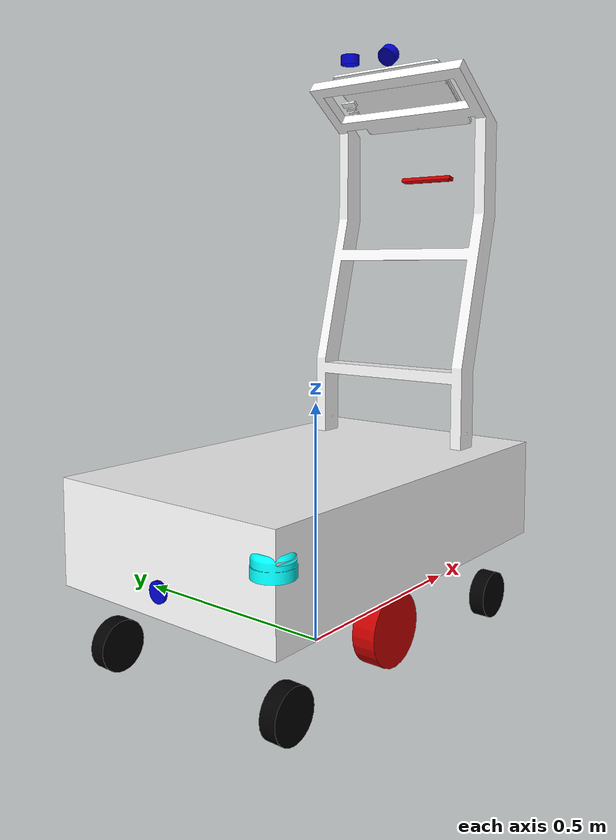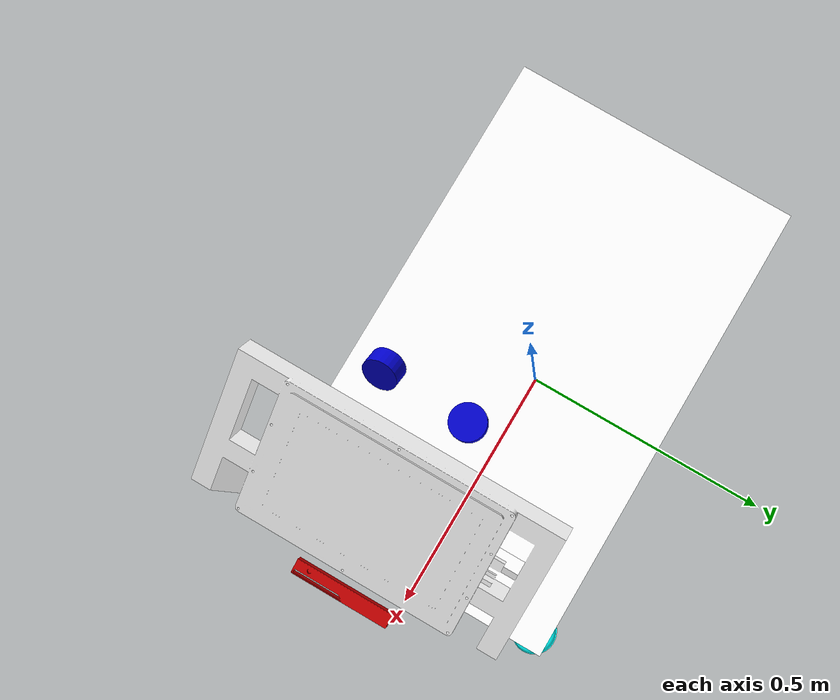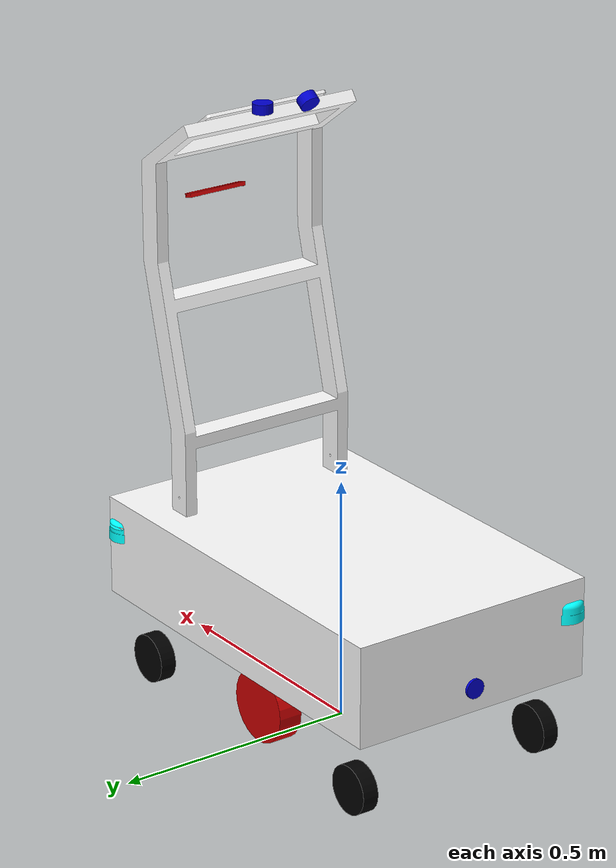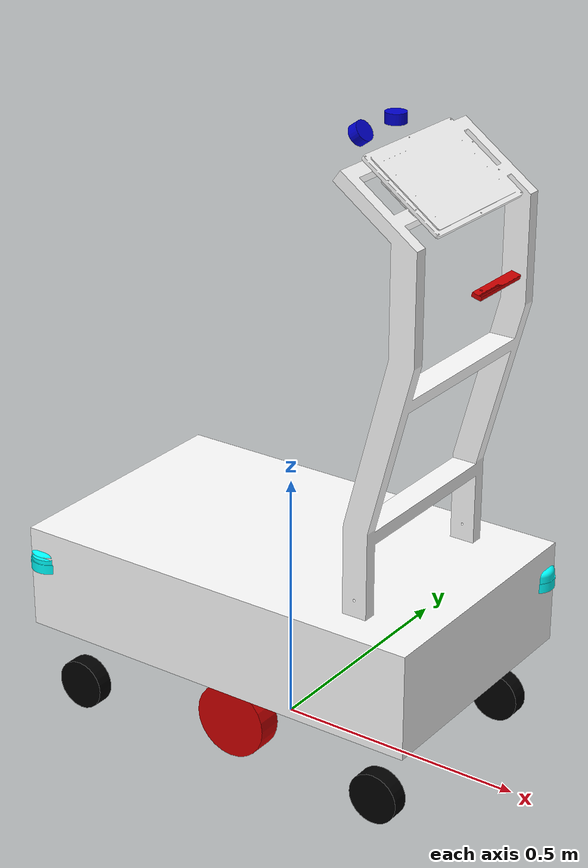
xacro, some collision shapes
<?xml version="1.0"?>
<robot name="amr" xmlns:xacro="http://www.ros.org/wiki/xacro">

    <!-- Defining the colors used in this robot -->
    <material name="Black">
        <color rgba="0.0 0.0 0.0 1.0" />
    </material>
    <material name="Red">
        <color rgba="0.8 0.0 0.0 1.0" />
    </material>
    <material name="White">
        <color rgba="1.0 1.0 1.0 1.0" />
    </material>
    <material name="Grey">
        <color rgba="0.8 0.8 0.8 1.0" />
    </material>
    <material name="Blue">
        <color rgba="0.0 0.0 0.8 1.0" />
    </material>
    <material name="Cyan">
        <color rgba="0.0 1.0 1.0 1.0" />
    </material>

    <!-- PROPERTY LIST -->
    <!--All units in m-kg-s-radians unit system -->
    <xacro:property name="M_PI" value="3.1415926535897931" />
    <xacro:property name="M_PI_2" value="${M_PI/2.0}" />
    <xacro:property name="DEG_TO_RAD" value="${M_PI/180.0}" />

    <!-- Main body specification -->
    <xacro:property name="base_height" value="0.207" />
    <xacro:property name="base_length" value="0.848" />
    <xacro:property name="base_width" value="0.525" />
    <xacro:property name="base_mass" value="50" />

    <!-- Caster wheel specification -->
    <xacro:property name="caster_wheel_height" value="0.034" />
    <xacro:property name="caster_wheel_radius" value="0.05" />
    <xacro:property name="caster_wheel_mass" value="1.13" />

    <xacro:property name="base_2_caster_wheel_x" value="${0.6865/2}" />
    <xacro:property name="base_2_caster_wheel_y" value="${0.430/2}" />
    <xacro:property name="base_2_caster_wheel_z" value="${base_height/2 + 0.129}" />

    <!-- Driving wheel specification -->
    <xacro:property name="driving_wheel_height" value="0.050" />
    <xacro:property name="driving_wheel_radius" value="0.075" />
    <xacro:property name="driving_wheel_mass" value="2.0" />
    <xacro:property name="driving_wheel_velocity" value="${4*M_PI}" />
    <xacro:property name="driving_wheel_effort" value="15" />

    <xacro:property name="base_2_driving_wheel_x" value="0.0" />
    <xacro:property name="base_2_driving_wheel_y" value="${driving_wheel_height/2 + 0.2986/2}" />
    <xacro:property name="base_2_driving_wheel_z" value="${base_height/2 + 0.105}" />

    <!-- RP LIDAR specification-->
    <xacro:property name="laser_height" value="0.041" />
    <xacro:property name="laser_radius" value="0.038" />
    <xacro:property name="laser_mass" value="0.190" />
    <xacro:property name="laser_update_rate" value="12" />
    <xacro:property name="laser_sample" value="360" />
    <xacro:property name="laser_resolution" value="1.0" />
    <xacro:property name="laser_min_angle" value="${0*DEG_TO_RAD}" />
    <xacro:property name="laser_max_angle" value="${250*DEG_TO_RAD}" />
    <xacro:property name="laser_resolution_range" value="0.01" />
    <xacro:property name="laser_min_range" value="0.15" />
    <xacro:property name="laser_max_range" value="11.0" />

    <xacro:property name="base_2_laser_x" value="${base_length/2 - 0.025}" />
    <xacro:property name="base_2_laser_y" value="${base_width/2 - 0.026}" />
    <xacro:property name="base_2_laser_z" value="${-1.0*base_height/2 + 0.1215}" />

    <!-- Camera specification-->
    <xacro:property name="camera_height" value="0.020" />
    <xacro:property name="camera_radius" value="0.020" />
    <xacro:property name="camera_mass" value="0.02" />
    <xacro:property name="camera_update_rate" value="24" />
    <xacro:property name="camera_sensor_width" value="640" />
    <xacro:property name="camera_sensor_height" value="480" />
    <xacro:property name="camera_sensor_hfov" value="${M_PI_2}" />
    <xacro:property name="camera_sensor_format" value="RGB8" />
    <xacro:property name="camera_sensor_near" value="0.01" />
    <xacro:property name="camera_sensor_far" value="50.0" />

    <xacro:property name="base_2_camera_rear_x" value="${-1.0*base_length/2 - 0.0155}" />
    <xacro:property name="base_2_camera_rear_y" value="${base_width/2 - 0.26335}" />
    <xacro:property name="base_2_camera_rear_z" value="${-1.0*base_height/2 + 0.0492}" />
    <xacro:property name="base_2_camera_rear_roll" value="0.0" />
    <xacro:property name="base_2_camera_rear_pitch" value="0.0" />
    <xacro:property name="base_2_camera_rear_yaw" value="${M_PI}" />
    <xacro:property name="base_2_camera_rear_roll_tuning" value="0.0" />
    <xacro:property name="base_2_camera_rear_pitch_tuning" value="0.0" />
    <xacro:property name="base_2_camera_rear_yaw_tuning" value="${0.0*DEG_TO_RAD}" />

    <xacro:property name="base_2_camera_top_x" value="${base_length/2 - 0.24101320}" />
    <xacro:property name="base_2_camera_top_y" value="${base_width/2 - 0.21154}" />
    <xacro:property name="base_2_camera_top_z" value="${-1.0*base_height/2 + 1.058778}" />
    <xacro:property name="base_2_camera_top_roll" value="0.0" />
    <xacro:property name="base_2_camera_top_pitch" value="${-1.0*M_PI_2}" />
    <xacro:property name="base_2_camera_top_yaw" value="${M_PI}" />
    <xacro:property name="base_2_camera_top_roll_tuning" value="0.0" />
    <xacro:property name="base_2_camera_top_pitch_tuning" value="${0.0*DEG_TO_RAD}" />
    <xacro:property name="base_2_camera_top_yaw_tuning" value="${0.0*DEG_TO_RAD}" />

    <xacro:property name="base_2_camera_monitoring_x" value="${base_length/2 - 0.261530}" />
    <xacro:property name="base_2_camera_monitoring_y" value="${base_width/2 - 0.313413}" />
    <xacro:property name="base_2_camera_monitoring_z" value="${-1.0*base_height/2 + 1.022624}" />
    <xacro:property name="base_2_camera_monitoring_roll" value="0.0" />
    <xacro:property name="base_2_camera_monitoring_pitch" value="${36.0*DEG_TO_RAD}" />
    <xacro:property name="base_2_camera_monitoring_yaw" value="${180*DEG_TO_RAD}" />
    <xacro:property name="base_2_camera_monitoring_roll_tuning" value="0.0" />
    <xacro:property name="base_2_camera_monitoring_pitch_tuning" value="0.0" />
    <xacro:property name="base_2_camera_monitoring_yaw_tuning" value="0.0" />

    <!-- Realsense specification-->
    <xacro:property name="realsense_frame_lower" value="${0*DEG_TO_RAD}" />
    <xacro:property name="realsense_frame_upper" value="${170*DEG_TO_RAD}" />
    <xacro:property name="realsense_frame_effort" value="1.9" />
    <xacro:property name="realsense_frame_velocity" value="4.0" />

    <xacro:property name="realsense_height" value="0.02" />
    <xacro:property name="realsense_length" value="0.01" />
    <xacro:property name="realsense_width" value="0.13" />
    <xacro:property name="realsense_mass" value="0.02" />
    <xacro:property name="realsense_update_rate" value="1" />
    <xacro:property name="realsense_point_cloud_cutoff" value="640" />
    <xacro:property name="realsense_sensor_width" value="640" />
    <xacro:property name="realsense_sensor_height" value="480" />
    <xacro:property name="realsense_sensor_hfov" value="${M_PI_2}" />
    <xacro:property name="realsense_sensor_format" value="RGB8" />
    <xacro:property name="realsense_sensor_near" value="0.1" />
    <xacro:property name="realsense_sensor_far" value="50.0" />

    <xacro:property name="base_2_realsense_x" value="${base_length/2 - 0.00425}" />
    <xacro:property name="base_2_realsense_y" value="0.0" />
    <xacro:property name="base_2_realsense_z" value="${-1.0*base_height/2 + 0.8005}" />

    <!-- Macro for calculating inertia of cylinder -->
    <xacro:macro name="cylinder_inertial" params="m r h">
        <inertial>
            <mass value="${m}" />
            <inertia
                ixx="${m*(3*r*r+h*h)/12}" ixy="0" ixz="0"
                iyy="${m*(3*r*r+h*h)/12}" iyz="0"
                izz="${m*r*r/2}" />
        </inertial>
    </xacro:macro>

    <!-- Macro for calculating inertia of box -->
    <xacro:macro name="box_inertial" params="m d w h">
        <inertial>
            <mass value="${m}" />
            <inertia
                ixx="${m*(w*w+h*h)/12}" ixy="0" ixz="0"
                iyy="${m*(d*d+h*h)/12}" iyz="0"
                izz="${m*(d*d+w*w)/12}" />
        </inertial>
    </xacro:macro>

    <!-- Caster wheel module -->
    <xacro:macro name="caster_wheel_module" params="fb rl flipX flipY">
        <link name="caster_wheel_${fb}_${rl}">
            <visual>
                <origin xyz="0 0 0" rpy="0 0 0" />

                <geometry>
                    <cylinder length="${caster_wheel_height}" radius="${caster_wheel_radius}"/>
                </geometry>

                <material name="Black" />
            </visual>

            <collision>
                <origin xyz="0 0 0" rpy="0 0 0"/>

                <geometry>
                    <cylinder length="${caster_wheel_height}" radius="${caster_wheel_radius}" />
                </geometry>
            </collision>

            <cylinder_inertial m="${caster_wheel_mass}" r="${caster_wheel_radius}" h="${caster_wheel_height}" />

        </link>

        <joint name="caster_wheel_${fb}_${rl}_joint" type="fixed">
            <parent link="base_link" />

            <child link="caster_wheel_${fb}_${rl}" />

            <origin
                xyz="${flipX*base_2_caster_wheel_x}
					 ${flipY*base_2_caster_wheel_y}
					 ${-base_2_caster_wheel_z}"
                rpy="${-flipY*M_PI_2} 0 0" />
        </joint>

        <gazebo reference="caster_wheel_${fb}_${rl}">
            <mu1>0.04</mu1>
            <mu2>0.04</mu2>
            <material>Gazebo/Black</material>
            <gravity>true</gravity>
        </gazebo>
    </xacro:macro>

    <!-- Driving wheel macro-->
    <xacro:macro name="driving_wheel_module" params="rl flip">
        <link name="driving_wheel_${rl}">
            <visual>
                <origin xyz="0 0 0" rpy="${M_PI_2} 0 0" />

                <geometry>
                    <cylinder length="${driving_wheel_height}" radius="${driving_wheel_radius}" />
                </geometry>

                <material name="Red" />
            </visual>

            <collision>
                <origin xyz="0 0 0" rpy="${M_PI_2} 0 0" />

                <geometry>
                    <cylinder length="${driving_wheel_height}" radius="${driving_wheel_radius}" />
                </geometry>

                <material name="Red" />
            </collision>

            <cylinder_inertial m="${driving_wheel_mass}" r="${driving_wheel_radius}" h="${driving_wheel_height}" />

        </link>

        <joint name="driving_wheel_${rl}_joint" type="continuous">
            <parent link="base_link" />
            <child link="driving_wheel_${rl}" />
            <origin
                xyz="${base_2_driving_wheel_x}
					 ${flip*base_2_driving_wheel_y}
					 ${-base_2_driving_wheel_z}"
                rpy="0 0 0" />
            <axis xyz="0 1 0" />
            <limit effort="${driving_wheel_effort}" velocity="${driving_wheel_velocity}"/>
            <dynamics damping="0.0" friction="0.0"/>
        </joint>

        <transmission name="driving_wheel_${rl}_trans">
            <type>transmission_interface/SimpleTransmission</type>

            <joint name="driving_wheel_${rl}_joint">
                <hardwareInterface>hardware_interface/EffortJointInterface</hardwareInterface>
            </joint>

            <actuator name="driving_wheel_${rl}_actuator">
                <hardwareInterface>EffortJointInterface</hardwareInterface>
                <mechanicalReduction>1</mechanicalReduction>
            </actuator>
        </transmission>

        <gazebo reference="driving_wheel_${rl}">
            <material>Gazebo/Red</material>
            <gravity>true</gravity>
            <mu1 value="0.7"/>
            <mu2 value="1.0"/>
            <fdir1 value="1 0 0"/>
            <kp value="10000000.0" />
            <kd value="1.0" />
        </gazebo>

    </xacro:macro>

    <!-- Laser macro -->
    <xacro:macro name="laser_module" params="fb flip">
        <link name="laser_${fb}">
            <visual>
                <origin xyz="0 0 0" rpy="0 0 0" />

                <geometry>
                    <mesh filename="package://ar/robot_description/mesh/rplidar.stl"/>
                </geometry>

                <material name="Cyan" />

            </visual>

            <collision>
                <origin xyz="0 0 0" rpy="0 0 0" />

                <geometry>
                    <cylinder length="${laser_height}" radius="${laser_radius}" />
                </geometry>

            </collision>

            <cylinder_inertial m="${laser_mass}" r="${laser_radius}" h="${laser_height}" />

        </link>

        <joint name="laser_${fb}_joint" type="fixed">
            <origin
                xyz="${flip*base_2_laser_x}
					 ${flip*base_2_laser_y}
					 ${base_2_laser_z}"
                rpy="0 0 ${-flip*M_PI_2 - 90*DEG_TO_RAD}" />
            <parent link="base_link" />
            <child link="laser_${fb}" />
        </joint>

        <sensor name="laser_${fb}_sensor" type="ray" update_rate="${laser_update_rate}">
            <parent link="laser_${fb}" />
            <origin xyz="0 0 0" rpy="0 0 0"/>
            <ray>
                <horizontal>
                    <sample>${laser_sample}</sample>
                    <resolution>${laser_resolution}</resolution>
                    <min_angle>${laser_min_angle}</min_angle>
                    <max_angle>${laser_max_angle}</max_angle>
                </horizontal>

                <range>
                    <min>${laser_min_range}</min>
                    <max>${laser_max_range}</max>
                </range>
            </ray>
        </sensor>

        <gazebo reference="laser_${fb}">
            <material>Gazebo/Grey</material>
            <sensor type="ray" name="laser_${fb}_sensor">
                <pose>0 0 0 0 0 0</pose>
                <visualize>false</visualize>
                <update_rate>${laser_update_rate}</update_rate>
                <ray>
                    <scan>
                        <horizontal>
                            <samples>${laser_sample}</samples>
                            <resolution>${laser_resolution}</resolution>
                            <min_angle>${laser_min_angle}</min_angle>
                            <max_angle>${laser_max_angle}</max_angle>
                        </horizontal>
                    </scan>
                    <range>
                        <min>${laser_min_range}</min>
                        <max>${laser_max_range}</max>
                        <resolution>${laser_resolution_range}</resolution>
                    </range>
                    <noise>
                        <type>gaussian</type>
                        <mean>0.0</mean>
                        <stddev>0.01</stddev>
                    </noise>
                </ray>
                <plugin name="gazebo_ros_head_hokuyo_controller" filename="libgazebo_ros_laser.so">
                    <topicName>laser_${fb}/scan</topicName>
                    <frameName>laser_${fb}</frameName>
                </plugin>
            </sensor>
        </gazebo>

    </xacro:macro>

    <xacro:macro name="camera_module" params="name x y z roll pitch yaw roll_t pitch_t yaw_t">
        <link name="camera_${name}_tuning_base" />

        <joint name="camera_${name}_base_joint" type="fixed">
            <origin xyz="${x} ${y} ${z}" rpy="${roll} ${pitch} ${yaw}" />
            <parent link="base_link" />
            <child link="camera_${name}_tuning_base" />
        </joint>

        <link name="camera_${name}_frame">
            <visual>
                <origin xyz="-${camera_height} 0 0" rpy="0 ${M_PI_2} 0"/>

                <geometry>
                    <mesh filename="package://ar/robot_description/mesh/camera.stl" />
                </geometry>

                <material name="Blue" />
            </visual>

            <collision>
                <origin xyz="-${camera_height} 0 0" rpy="0 ${M_PI_2} 0"/>

                <geometry>
                    <cylinder length="${camera_height}" radius="${camera_radius}" />
                </geometry>
            </collision>

            <cylinder_inertial m="${camera_mass}" r="${camera_radius}" h="${camera_height}" />

        </link>

        <joint name="camera_${name}_frame_joint" type="fixed">
            <origin xyz="0 0 0" rpy="${roll_t} ${pitch_t} ${yaw_t}" />
            <parent link="camera_${name}_tuning_base" />
            <child link="camera_${name}_frame" />
        </joint>

        <link name="camera_${name}" />

        <joint name="camera_${name}_joint" type="fixed">
            <origin xyz="0 0 0" rpy="${-M_PI_2} 0 ${-M_PI_2}" />
            <parent link="camera_${name}_frame" />
            <child link="camera_${name}" />
        </joint>

        <sensor name="camera_sensor" type="camera" update_rate="${camera_update_rate}">
            <parent link="camera_${name}" />
            <origin xyz="0 0 0" rpy="0 0 0"/>
            <camera>
                <image>
                    <width>${camera_sensor_width}</width>
                    <height>${camera_sensor_height}</height>
                    <hfov>${camera_sensor_hfov}</hfov>
                    <format>${camera_sensor_format}</format>
                    <near>${camera_sensor_near}</near>
                    <far>${camera_sensor_far}</far>
                </image>
            </camera>
        </sensor>

        <gazebo reference="camera_${name}_frame">
            <material>Gazebo/Blue</material>
            <sensor type="camera" name="camera_${name}">
                <update_rate>${camera_update_rate}</update_rate>
                <camera name="camera_${name}">
                    <horizontal_fov>${camera_sensor_hfov}</horizontal_fov>
                    <image>
                        <width>${camera_sensor_width}</width>
                        <height>${camera_sensor_height}</height>
                        <format>R8G8B8</format>
                    </image>
                    <clip>
                        <near>${camera_sensor_near}</near>
                        <far>${camera_sensor_far}</far>
                    </clip>
                    <noise>
                        <type>gaussian</type>
                        <mean>0.0</mean>
                        <stddev>0.07</stddev>
                    </noise>
                </camera>
                <plugin name="camera_controller" filename="libgazebo_ros_camera.so">
                    <alwaysOn>true</alwaysOn>
                    <updateRate>${camera_update_rate}</updateRate>
                    <cameraName>camera_${name}</cameraName>
                    <imageTopicName>image_raw</imageTopicName>
                    <cameraInfoTopicName>camera_info</cameraInfoTopicName>
                    <frameName>camera_${name}</frameName>
                    <hackBaseline>0.0</hackBaseline>
                    <distortionK1>0.0</distortionK1>
                    <distortionK2>0.0</distortionK2>
                    <distortionK3>0.0</distortionK3>
                    <distortionT1>0.0</distortionT1>
                    <distortionT2>0.0</distortionT2>
                </plugin>
            </sensor>
        </gazebo>

    </xacro:macro>

    <!-- BASE-FOOTPRINT -->
    <!-- base_footprint is a fictitious link(frame) that is on the ground right below base_link origin -->
    <link name="base_footprint">
        <visual>
            <origin xyz="0 0 0" rpy="0 0 0" />
            <geometry>
                <box size="0.001 0.001 0.001" />
            </geometry>
        </visual>
    </link>

    <gazebo reference="base_footprint">
        <gravity>true</gravity>
    </gazebo>

    <joint name="base_joint" type="fixed">
        <origin xyz="0 0 ${driving_wheel_radius + base_2_driving_wheel_z}" rpy="0 0 0" />
        <parent link="base_footprint"/>
        <child link="base_link" />
    </joint>

    <!-- BASE-LINK -->
    <!--Actual body/chassis of the robot-->
    <link name="base_link">
        <visual>
            <origin xyz="0 0 0" rpy="0 0 0" />
            <geometry>
                <box size="${base_length} ${base_width} ${base_height}" />
            </geometry>
            <material name="White" />
        </visual>

        <collision>
            <origin xyz="0 0 0" rpy="0 0 0 " />
            <geometry>
                <box size="${base_length+0.02} ${base_width+0.02} ${base_height+0.02}" />
            </geometry>
        </collision>

        <box_inertial m="${base_mass}" d="${base_length}" w="${base_width}" h="${base_height}" />
    </link>

    <gazebo reference="base_link">
        <material>Gazebo/White</material>
        <gravity>true</gravity>
    </gazebo>

    <!-- Caster wheel definitions-->
    <caster_wheel_module fb="front" rl="right" flipX="1" flipY="-1" />
    <caster_wheel_module fb="front" rl="left" flipX="1" flipY="1" />
    <caster_wheel_module fb="rear" rl="right" flipX="-1" flipY="-1" />
    <caster_wheel_module fb="rear" rl="left" flipX="-1" flipY="1" />

    <!-- Driving wheel definitions -->
    <driving_wheel_module rl="left" flip="1" />
    <driving_wheel_module rl="right" flip="-1" />

    <!-- SENSORS -->
    <!-- RP LIDAR -->
    <laser_module fb="front" flip="1" />
    <laser_module fb="rear" flip="-1" />

    <!-- Camera -->
    <camera_module
        name="rear"
        x="${base_2_camera_rear_x}"
        y="${base_2_camera_rear_y}"
        z="${base_2_camera_rear_z}"
        roll="${base_2_camera_rear_roll}"
        pitch="${base_2_camera_rear_pitch}"
        yaw="${base_2_camera_rear_yaw}"
        roll_t="${base_2_camera_rear_roll_tuning}"
        pitch_t="${base_2_camera_rear_pitch_tuning}"
        yaw_t="${base_2_camera_rear_yaw_tuning}" />

    <camera_module
        name="top"
        x="${base_2_camera_top_x}"
        y="${base_2_camera_top_y}"
        z="${base_2_camera_top_z}"
        roll="${base_2_camera_top_roll}"
        pitch="${base_2_camera_top_pitch}"
        yaw="${base_2_camera_top_yaw}"
        roll_t="${base_2_camera_top_roll_tuning}"
        pitch_t="${base_2_camera_top_pitch_tuning}"
        yaw_t="${base_2_camera_top_yaw_tuning}" />

    <camera_module
        name="monitoring"
        x="${base_2_camera_monitoring_x}"
        y="${base_2_camera_monitoring_y}"
        z="${base_2_camera_monitoring_z}"
        roll="${base_2_camera_monitoring_roll}"
        pitch="${base_2_camera_monitoring_pitch}"
        yaw="${base_2_camera_monitoring_yaw}"
        roll_t="${base_2_camera_monitoring_roll_tuning}"
        pitch_t="${base_2_camera_monitoring_pitch_tuning}"
        yaw_t="${base_2_camera_monitoring_yaw_tuning}" />

    <link name="ui_frame">
        <visual>
            <origin xyz="0 0 0" rpy="0 0 0"/>

            <geometry>
                <mesh filename="package://ar/robot_description/mesh/ui_frame.stl" />
            </geometry>

            <material name="White" />
        </visual>

        <collision>
            <origin xyz="0 0 0" rpy="0 0 0"/>

            <geometry>
                <mesh filename="package://ar/robot_description/mesh/ui_frame.stl" />
            </geometry>
        </collision>

        <inertial>
            <mass value="0.02" />
            <inertia ixx="0.0" ixy="0.0" ixz="0.0" iyy="0.0" iyz="0.0" izz="0.0" />
        </inertial>
    </link>

    <gazebo reference="ui_frame">
        <material>Gazebo/White</material>
        <gravity>true</gravity>
    </gazebo>

    <joint name="ui_frame_joint" type="fixed">
        <origin xyz="${base_length/2 - 0.150} 0 ${base_height/2 - 0.10}" rpy="0 0 0" />
        <parent link="base_link"/>
        <child link="ui_frame" />
    </joint>

    <link name="realsense_frame">
        <visual>
            <origin xyz="0 0 0" rpy="0 0 0" />

            <geometry>
                <mesh filename="package://ar/robot_description/mesh/realsense.stl" />
            </geometry>

            <material name="Red" />
        </visual>

        <collision>
            <origin xyz="0 0 0" rpy="0 0 0"/>

            <geometry>
                <box size="${realsense_length} ${realsense_width} ${realsense_height}" />
            </geometry>
        </collision>

        <box_inertial
            m="${realsense_mass}"
            d="${realsense_length}"
            w="${realsense_width}"
            h="${realsense_mass}" />
    </link>

    <joint name="realsense_frame_joint" type="revolute">
        <origin
            xyz="${base_2_realsense_x}
                 ${base_2_realsense_y}
                 ${base_2_realsense_z}"
            rpy="0 ${-75*DEG_TO_RAD} 0" />
        <parent link="base_link"/>
        <child link="realsense_frame" />
        <axis xyz="0 1 0" />
        <limit
            lower="${realsense_frame_lower}"
            upper="${realsense_frame_upper}"
            effort="${realsense_frame_effort}"
            velocity="${realsense_frame_velocity}" />
    </joint>

    <transmission name="realsense_frame_trans">
        <type>transmission_interface/SimpleTransmission</type>

        <joint name="realsense_frame_joint">
            <hardwareInterface>hardware_interface/PositionJointInterface</hardwareInterface>
        </joint>

        <actuator name="realsense_frame_actuator">
            <mechanicalReduction>1</mechanicalReduction>
            <hardwareInterface>PositionJointInterface</hardwareInterface>
        </actuator>
    </transmission>

    <gazebo reference="realsense_frame">
        <material>Gazebo/Red</material>
        <gravity>true</gravity>
    </gazebo>

    <link name="realsense" />

    <joint name="realsense_joint" type="fixed">
        <origin xyz="0.004 0 0" rpy="${-M_PI_2} 0 ${-M_PI_2}"/>
        <parent link="realsense_frame" />
        <child link="realsense" />
    </joint>

    <gazebo reference="realsense_frame">
        <sensor type="depth" name="realsense">
            <always_on>true</always_on>
            <visualize>false</visualize>
            <camera>
                <horizontal_fov>${realsense_sensor_hfov}</horizontal_fov>
                <image>
                    <width>${realsense_sensor_width}</width>
                    <height>${realsense_sensor_height}</height>
                    <format>R8G8B8</format>
                </image>
                <clip>
                    <near>${realsense_sensor_near}</near>
                    <far>${realsense_sensor_far}</far>
                </clip>
                <depth_camera></depth_camera>
            </camera>

            <plugin name="realsense_controller" filename="libgazebo_ros_depth_camera.so">
                <always_on>true</always_on>
                <cameraName>realsense</cameraName>
                <baseline>0.2</baseline>
                <alwaysOn>true</alwaysOn>
                <updateRate>10</updateRate>
                <imageTopicName>/realsense/rgb/image_raw</imageTopicName>
                <cameraInfoTopicName>/realsense/rgb/camera_info</cameraInfoTopicName>
                <depthImageTopicName>/realsense/depth/image_raw</depthImageTopicName>
                <depthImageInfoTopicName>/realsense/depth/camera_info</depthImageInfoTopicName>
                <pointCloudTopicName>/realsense/depth/points</pointCloudTopicName>
                <frameName>realsense_frame</frameName>

                <pointCloudCutoff>${realsense_point_cloud_cutoff}</pointCloudCutoff>
                <distortionK1>0.0</distortionK1>
                <distortionK2>0.0</distortionK2>
                <distortionK3>0.0</distortionK3>
                <distortionT1>0.0</distortionT1>
                <distortionT2>0.0</distortionT2>
                <CxPrime>0</CxPrime>
                <Cx>0</Cx>
                <Cy>0</Cy>
                <focalLength>0</focalLength>
                <hackBaseline>0</hackBaseline>
            </plugin>
        </sensor>
    </gazebo>

    <!-- Gazebo plugins -->
    <gazebo>
        <plugin name="gazebo_ros_control" filename="libgazebo_ros_control.so">
        </plugin>
    </gazebo>

</robot>
